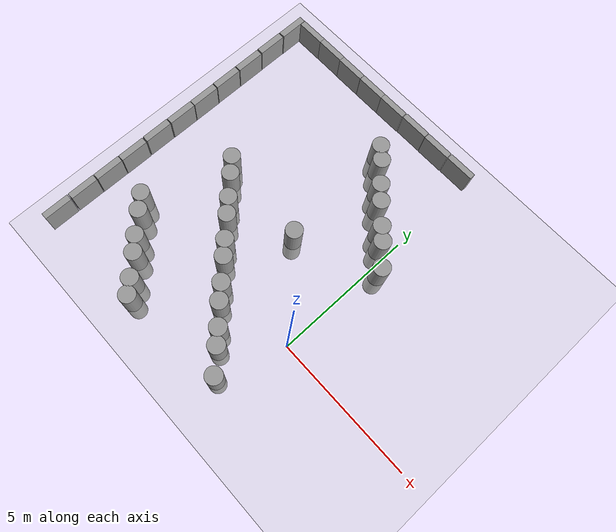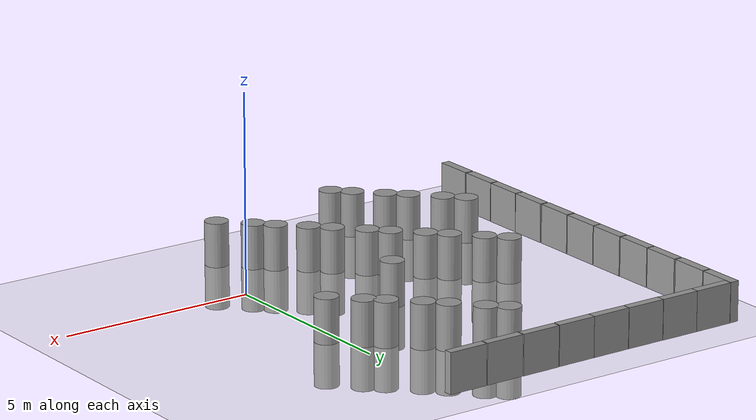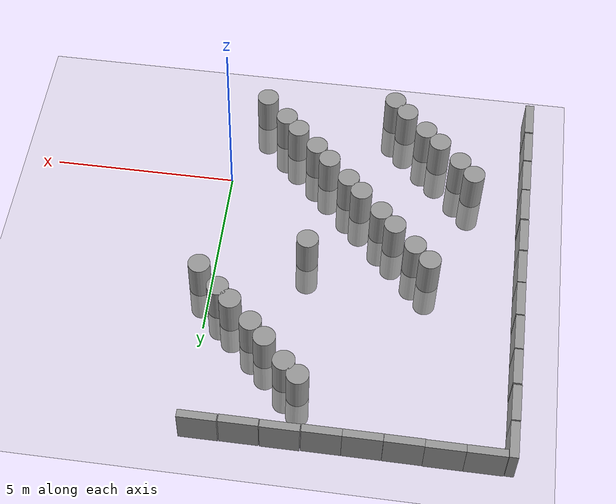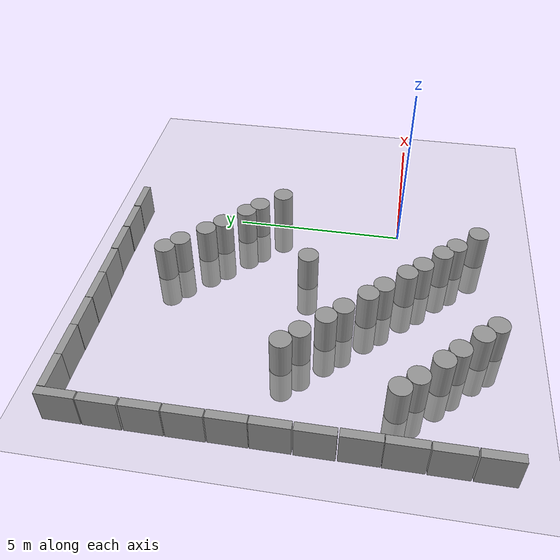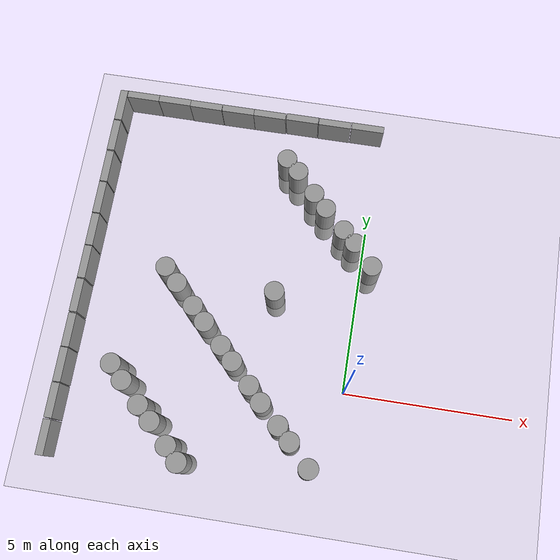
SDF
<sdf version="1.6">
 <world name="default">
  <model name="ground_plane">
   <static>1</static>
   <static>1</static>
   <link name="link">
    <collision name="collision">
     <geometry><plane><normal>0 0 1</normal><size>100 100</size></plane></geometry>
     <surface><friction><ode><mu>100</mu><mu2>50</mu2></ode></friction></surface>
    </collision>
    <visual name="visual">
     <cast_shadows>0</cast_shadows>
     <geometry><plane><normal>0 0 1</normal><size>100 100</size></plane></geometry>
     <material>
      <script><uri>file://media/materials/scripts/gazebo.material</uri><name>Gazebo/Grey</name></script>
     </material>
    </visual>
   </link>
  </model>
  <model name="unit_box_clone">
   <pose>-7.49845 8.12002 0.499999 -1e-06 2e-06 0.00043</pose>
   <link name="link">
    <inertial>
     <mass>1</mass>
     <inertia>
      <ixx>0.166667</ixx>
      <ixy>0</ixy>
      <ixz>0</ixz>
      <iyy>0.166667</iyy>
      <iyz>0</iyz>
      <izz>0.166667</izz>
     </inertia>
    </inertial>
    <collision name="collision"><geometry><box><size>1 0.210541 1</size></box></geometry></collision>
    <visual name="visual">
     <geometry><box><size>1 0.210541 1</size></box></geometry>
     <material>
      <script><name>Gazebo/Grey</name><uri>file://media/materials/scripts/gazebo.material</uri></script>
     </material>
    </visual>
   </link>
  </model>
  <model name="unit_box_clone_0">
   <pose>-6.49724 8.11954 0.499999 1e-06 -2e-06 -0.002361</pose>
   <link name="link">
    <inertial>
     <mass>1</mass>
     <inertia>
      <ixx>0.166667</ixx>
      <ixy>0</ixy>
      <ixz>0</ixz>
      <iyy>0.166667</iyy>
      <iyz>0</iyz>
      <izz>0.166667</izz>
     </inertia>
    </inertial>
    <collision name="collision"><geometry><box><size>1 0.210541 1</size></box></geometry></collision>
    <visual name="visual">
     <geometry><box><size>1 0.210541 1</size></box></geometry>
     <material>
      <script><name>Gazebo/Grey</name><uri>file://media/materials/scripts/gazebo.material</uri></script>
     </material>
    </visual>
   </link>
  </model>
  <model name="unit_box_clone_1">
   <pose>-5.49722 8.10835 0.499999 1e-06 2e-06 -0.002535</pose>
   <link name="link">
    <inertial>
     <mass>1</mass>
     <inertia>
      <ixx>0.166667</ixx>
      <ixy>0</ixy>
      <ixz>0</ixz>
      <iyy>0.166667</iyy>
      <iyz>0</iyz>
      <izz>0.166667</izz>
     </inertia>
    </inertial>
    <collision name="collision"><geometry><box><size>1 0.210541 1</size></box></geometry></collision>
    <visual name="visual">
     <geometry><box><size>1 0.210541 1</size></box></geometry>
     <material>
      <script><name>Gazebo/Grey</name><uri>file://media/materials/scripts/gazebo.material</uri></script>
     </material>
    </visual>
   </link>
  </model>
  <model name="unit_box_clone_4">
   <pose>-2.46316 8.11871 0.499999 -1e-06 2e-06 0.00043</pose>
   <link name="link">
    <inertial>
     <mass>1</mass>
     <inertia>
      <ixx>0.166667</ixx>
      <ixy>0</ixy>
      <ixz>0</ixz>
      <iyy>0.166667</iyy>
      <iyz>0</iyz>
      <izz>0.166667</izz>
     </inertia>
    </inertial>
    <collision name="collision"><geometry><box><size>1 0.210541 1</size></box></geometry></collision>
    <visual name="visual">
     <geometry><box><size>1 0.210541 1</size></box></geometry>
     <material>
      <script><name>Gazebo/Grey</name><uri>file://media/materials/scripts/gazebo.material</uri></script>
     </material>
    </visual>
   </link>
  </model>
  <model name="unit_box_clone_5">
   <pose>-1.44425 8.11205 0.499999 -1e-06 2e-06 0.00043</pose>
   <link name="link">
    <inertial>
     <mass>1</mass>
     <inertia>
      <ixx>0.166667</ixx>
      <ixy>0</ixy>
      <ixz>0</ixz>
      <iyy>0.166667</iyy>
      <iyz>0</iyz>
      <izz>0.166667</izz>
     </inertia>
    </inertial>
    <collision name="collision"><geometry><box><size>1 0.210541 1</size></box></geometry></collision>
    <visual name="visual">
     <geometry><box><size>1 0.210541 1</size></box></geometry>
     <material>
      <script><name>Gazebo/Grey</name><uri>file://media/materials/scripts/gazebo.material</uri></script>
     </material>
    </visual>
   </link>
  </model>
  <model name="unit_box_clone_6">
   <pose>-0.418677 8.1187 0.499999 -1e-06 2e-06 0.00043</pose>
   <link name="link">
    <inertial>
     <mass>1</mass>
     <inertia>
      <ixx>0.166667</ixx>
      <ixy>0</ixy>
      <ixz>0</ixz>
      <iyy>0.166667</iyy>
      <iyz>0</iyz>
      <izz>0.166667</izz>
     </inertia>
    </inertial>
    <collision name="collision"><geometry><box><size>1 0.210541 1</size></box></geometry></collision>
    <visual name="visual">
     <geometry><box><size>1 0.210541 1</size></box></geometry>
     <material>
      <script><name>Gazebo/Grey</name><uri>file://media/materials/scripts/gazebo.material</uri></script>
     </material>
    </visual>
   </link>
  </model>
  <model name="unit_box_0_clone_4_clone">
   <pose>-8.12647 7.71768 0.5 1e-06 1e-06 0.000121</pose>
   <link name="link">
    <inertial>
     <mass>1</mass>
     <inertia>
      <ixx>0.166667</ixx>
      <ixy>0</ixy>
      <ixz>0</ixz>
      <iyy>0.166667</iyy>
      <iyz>0</iyz>
      <izz>0.166667</izz>
     </inertia>
    </inertial>
    <collision name="collision"><geometry><box><size>0.230819 1 1</size></box></geometry></collision>
    <visual name="visual">
     <geometry><box><size>0.230819 1 1</size></box></geometry>
     <material>
      <script><name>Gazebo/Grey</name><uri>file://media/materials/scripts/gazebo.material</uri></script>
     </material>
    </visual>
   </link>
  </model>
  <model name="unit_box_0_clone_4_clone_0">
   <pose>-8.13281 6.68714 0.5 1e-06 1e-06 0.000121</pose>
   <link name="link">
    <inertial>
     <mass>1</mass>
     <inertia>
      <ixx>0.166667</ixx>
      <ixy>0</ixy>
      <ixz>0</ixz>
      <iyy>0.166667</iyy>
      <iyz>0</iyz>
      <izz>0.166667</izz>
     </inertia>
    </inertial>
    <collision name="collision"><geometry><box><size>0.230819 1 1</size></box></geometry></collision>
    <visual name="visual">
     <geometry><box><size>0.230819 1 1</size></box></geometry>
     <material>
      <script><name>Gazebo/Grey</name><uri>file://media/materials/scripts/gazebo.material</uri></script>
     </material>
    </visual>
   </link>
  </model>
  <model name="unit_box_0_clone_4_clone_1">
   <pose>-8.12606 5.64722 0.5 1e-06 1e-06 0.000121</pose>
   <link name="link">
    <inertial>
     <mass>1</mass>
     <inertia>
      <ixx>0.166667</ixx>
      <ixy>0</ixy>
      <ixz>0</ixz>
      <iyy>0.166667</iyy>
      <iyz>0</iyz>
      <izz>0.166667</izz>
     </inertia>
    </inertial>
    <collision name="collision"><geometry><box><size>0.230819 1 1</size></box></geometry></collision>
    <visual name="visual">
     <geometry><box><size>0.230819 1 1</size></box></geometry>
     <material>
      <script><name>Gazebo/Grey</name><uri>file://media/materials/scripts/gazebo.material</uri></script>
     </material>
    </visual>
   </link>
  </model>
  <model name="unit_box_0_clone_4_clone_2">
   <pose>-8.12607 4.6208 0.5 1e-06 1e-06 0.000121</pose>
   <link name="link">
    <inertial>
     <mass>1</mass>
     <inertia>
      <ixx>0.166667</ixx>
      <ixy>0</ixy>
      <ixz>0</ixz>
      <iyy>0.166667</iyy>
      <iyz>0</iyz>
      <izz>0.166667</izz>
     </inertia>
    </inertial>
    <collision name="collision"><geometry><box><size>0.230819 1 1</size></box></geometry></collision>
    <visual name="visual">
     <geometry><box><size>0.230819 1 1</size></box></geometry>
     <material>
      <script><name>Gazebo/Grey</name><uri>file://media/materials/scripts/gazebo.material</uri></script>
     </material>
    </visual>
   </link>
  </model>
  <model name="unit_box_0_clone_4_clone_3">
   <pose>-8.11932 3.59438 0.5 1e-06 1e-06 0.000121</pose>
   <link name="link">
    <inertial>
     <mass>1</mass>
     <inertia>
      <ixx>0.166667</ixx>
      <ixy>0</ixy>
      <ixz>0</ixz>
      <iyy>0.166667</iyy>
      <iyz>0</iyz>
      <izz>0.166667</izz>
     </inertia>
    </inertial>
    <collision name="collision"><geometry><box><size>0.230819 1 1</size></box></geometry></collision>
    <visual name="visual">
     <geometry><box><size>0.230819 1 1</size></box></geometry>
     <material>
      <script><name>Gazebo/Grey</name><uri>file://media/materials/scripts/gazebo.material</uri></script>
     </material>
    </visual>
   </link>
  </model>
  <model name="unit_box_0_clone_4_clone_4">
   <pose>-8.11932 2.57472 0.5 1e-06 1e-06 0.000121</pose>
   <link name="link">
    <inertial>
     <mass>1</mass>
     <inertia>
      <ixx>0.166667</ixx>
      <ixy>0</ixy>
      <ixz>0</ixz>
      <iyy>0.166667</iyy>
      <iyz>0</iyz>
      <izz>0.166667</izz>
     </inertia>
    </inertial>
    <collision name="collision"><geometry><box><size>0.230819 1 1</size></box></geometry></collision>
    <visual name="visual">
     <geometry><box><size>0.230819 1 1</size></box></geometry>
     <material>
      <script><name>Gazebo/Grey</name><uri>file://media/materials/scripts/gazebo.material</uri></script>
     </material>
    </visual>
   </link>
  </model>
  <model name="unit_box_0_clone_4_clone_5">
   <pose>-8.12608 1.54155 0.5 1e-06 1e-06 0.000121</pose>
   <link name="link">
    <inertial>
     <mass>1</mass>
     <inertia>
      <ixx>0.166667</ixx>
      <ixy>0</ixy>
      <ixz>0</ixz>
      <iyy>0.166667</iyy>
      <iyz>0</iyz>
      <izz>0.166667</izz>
     </inertia>
    </inertial>
    <collision name="collision"><geometry><box><size>0.230819 1 1</size></box></geometry></collision>
    <visual name="visual">
     <geometry><box><size>0.230819 1 1</size></box></geometry>
     <material>
      <script><name>Gazebo/Grey</name><uri>file://media/materials/scripts/gazebo.material</uri></script>
     </material>
    </visual>
   </link>
  </model>
  <model name="unit_box_0_clone_4_clone_6">
   <pose>-8.11933 0.501629 0.5 1e-06 1e-06 0.000121</pose>
   <link name="link">
    <inertial>
     <mass>1</mass>
     <inertia>
      <ixx>0.166667</ixx>
      <ixy>0</ixy>
      <ixz>0</ixz>
      <iyy>0.166667</iyy>
      <iyz>0</iyz>
      <izz>0.166667</izz>
     </inertia>
    </inertial>
    <collision name="collision"><geometry><box><size>0.230819 1 1</size></box></geometry></collision>
    <visual name="visual">
     <geometry><box><size>0.230819 1 1</size></box></geometry>
     <material>
      <script><name>Gazebo/Grey</name><uri>file://media/materials/scripts/gazebo.material</uri></script>
     </material>
    </visual>
   </link>
  </model>
  <model name="unit_box_0_clone_4_clone_7">
   <pose>-8.12609 -0.518035 0.5 1e-06 1e-06 0.000121</pose>
   <link name="link">
    <inertial>
     <mass>1</mass>
     <inertia>
      <ixx>0.166667</ixx>
      <ixy>0</ixy>
      <ixz>0</ixz>
      <iyy>0.166667</iyy>
      <iyz>0</iyz>
      <izz>0.166667</izz>
     </inertia>
    </inertial>
    <collision name="collision"><geometry><box><size>0.230819 1 1</size></box></geometry></collision>
    <visual name="visual">
     <geometry><box><size>0.230819 1 1</size></box></geometry>
     <material>
      <script><name>Gazebo/Grey</name><uri>file://media/materials/scripts/gazebo.material</uri></script>
     </material>
    </visual>
   </link>
  </model>
  <model name="unit_box_0_clone_4_clone_8">
   <pose>-8.13284 -1.54446 0.5 1e-06 1e-06 0.000121</pose>
   <link name="link">
    <inertial>
     <mass>1</mass>
     <inertia>
      <ixx>0.166667</ixx>
      <ixy>0</ixy>
      <ixz>0</ixz>
      <iyy>0.166667</iyy>
      <iyz>0</iyz>
      <izz>0.166667</izz>
     </inertia>
    </inertial>
    <collision name="collision"><geometry><box><size>0.230819 1 1</size></box></geometry></collision>
    <visual name="visual">
     <geometry><box><size>0.230819 1 1</size></box></geometry>
     <material>
      <script><name>Gazebo/Grey</name><uri>file://media/materials/scripts/gazebo.material</uri></script>
     </material>
    </visual>
   </link>
  </model>
  <model name="unit_box_0_clone_4_clone_9">
   <pose>-8.13285 -2.58438 0.5 1e-06 1e-06 0.000121</pose>
   <link name="link">
    <inertial>
     <mass>1</mass>
     <inertia>
      <ixx>0.166667</ixx>
      <ixy>0</ixy>
      <ixz>0</ixz>
      <iyy>0.166667</iyy>
      <iyz>0</iyz>
      <izz>0.166667</izz>
     </inertia>
    </inertial>
    <collision name="collision"><geometry><box><size>0.230819 1 1</size></box></geometry></collision>
    <visual name="visual">
     <geometry><box><size>0.230819 1 1</size></box></geometry>
     <material>
      <script><name>Gazebo/Grey</name><uri>file://media/materials/scripts/gazebo.material</uri></script>
     </material>
    </visual>
   </link>
  </model>
  <model name="unit_cylinder_153_clone_clone_5_clone_clone_13_clone_0_clone_29_clone_32_clone_0_clone_4_clone_46_clone_42_clone_clone_clone_4_clone_2_clone_5">
   <static>1</static>
   <pose>-6.6952 -0.278575 0 0 -0 0</pose>
   <link name="link">
    <inertial>
     <mass>1</mass>
     <inertia><ixx>0.145833</ixx><ixy>0</ixy><ixz>0</ixz><iyy>0.145833</iyy><iyz>0</iyz><izz>0.125</izz></inertia>
    </inertial>
    <collision name="collision">
     <geometry><cylinder><radius>0.295479</radius><length>2.18667</length></cylinder></geometry>
    </collision>
    <visual name="visual">
     <geometry><cylinder><radius>0.295479</radius><length>2.18667</length></cylinder></geometry>
     <material>
      <script><name>Gazebo/Grey</name><uri>file://media/materials/scripts/gazebo.material</uri></script>
     </material>
    </visual>
   </link>
  </model>
  <model name="unit_cylinder_153_clone_clone_5_clone_clone_13_clone_0_clone_29_clone_32_clone_0_clone_4_clone_46_clone_42_clone_clone_clone_4_clone_2_clone_6">
   <static>1</static>
   <pose>-6.28978 -0.703297 0 0 -0 0</pose>
   <link name="link">
    <inertial>
     <mass>1</mass>
     <inertia><ixx>0.145833</ixx><ixy>0</ixy><ixz>0</ixz><iyy>0.145833</iyy><iyz>0</iyz><izz>0.125</izz></inertia>
    </inertial>
    <collision name="collision">
     <geometry><cylinder><radius>0.295479</radius><length>2.18667</length></cylinder></geometry>
    </collision>
    <visual name="visual">
     <geometry><cylinder><radius>0.295479</radius><length>2.18667</length></cylinder></geometry>
     <material>
      <script><name>Gazebo/Grey</name><uri>file://media/materials/scripts/gazebo.material</uri></script>
     </material>
    </visual>
   </link>
  </model>
  <model name="unit_cylinder_153_clone_clone_5_clone_clone_13_clone_0_clone_29_clone_32_clone_0_clone_4_clone_46_clone_42_clone_clone_clone_4_clone_2_clone_7">
   <static>1</static>
   <pose>-5.69132 -1.31142 0 0 -0 0</pose>
   <link name="link">
    <inertial>
     <mass>1</mass>
     <inertia><ixx>0.145833</ixx><ixy>0</ixy><ixz>0</ixz><iyy>0.145833</iyy><iyz>0</iyz><izz>0.125</izz></inertia>
    </inertial>
    <collision name="collision">
     <geometry><cylinder><radius>0.295479</radius><length>2.18667</length></cylinder></geometry>
    </collision>
    <visual name="visual">
     <geometry><cylinder><radius>0.295479</radius><length>2.18667</length></cylinder></geometry>
     <material>
      <script><name>Gazebo/Grey</name><uri>file://media/materials/scripts/gazebo.material</uri></script>
     </material>
    </visual>
   </link>
  </model>
  <model name="unit_cylinder_153_clone_clone_5_clone_clone_13_clone_0_clone_29_clone_32_clone_0_clone_4_clone_46_clone_42_clone_clone_clone_4_clone_2_clone_8">
   <static>1</static>
   <pose>-5.27625 -1.70719 0 0 -0 0</pose>
   <link name="link">
    <inertial>
     <mass>1</mass>
     <inertia><ixx>0.145833</ixx><ixy>0</ixy><ixz>0</ixz><iyy>0.145833</iyy><iyz>0</iyz><izz>0.125</izz></inertia>
    </inertial>
    <collision name="collision">
     <geometry><cylinder><radius>0.295479</radius><length>2.18667</length></cylinder></geometry>
    </collision>
    <visual name="visual">
     <geometry><cylinder><radius>0.295479</radius><length>2.18667</length></cylinder></geometry>
     <material>
      <script><name>Gazebo/Grey</name><uri>file://media/materials/scripts/gazebo.material</uri></script>
     </material>
    </visual>
   </link>
  </model>
  <model name="unit_cylinder_153_clone_clone_5_clone_clone_13_clone_0_clone_29_clone_32_clone_0_clone_4_clone_46_clone_42_clone_clone_clone_4_clone_2_clone_9">
   <static>1</static>
   <pose>-4.69709 -2.29601 0 0 -0 0</pose>
   <link name="link">
    <inertial>
     <mass>1</mass>
     <inertia><ixx>0.145833</ixx><ixy>0</ixy><ixz>0</ixz><iyy>0.145833</iyy><iyz>0</iyz><izz>0.125</izz></inertia>
    </inertial>
    <collision name="collision">
     <geometry><cylinder><radius>0.295479</radius><length>2.18667</length></cylinder></geometry>
    </collision>
    <visual name="visual">
     <geometry><cylinder><radius>0.295479</radius><length>2.18667</length></cylinder></geometry>
     <material>
      <script><name>Gazebo/Grey</name><uri>file://media/materials/scripts/gazebo.material</uri></script>
     </material>
    </visual>
   </link>
  </model>
  <model name="unit_cylinder_153_clone_clone_5_clone_clone_13_clone_0_clone_29_clone_32_clone_0_clone_4_clone_46_clone_42_clone_clone_clone_4_clone_2_clone_10">
   <static>1</static>
   <pose>-4.32064 -2.69177 0 0 -0 0</pose>
   <link name="link">
    <inertial>
     <mass>1</mass>
     <inertia><ixx>0.145833</ixx><ixy>0</ixy><ixz>0</ixz><iyy>0.145833</iyy><iyz>0</iyz><izz>0.125</izz></inertia>
    </inertial>
    <collision name="collision">
     <geometry><cylinder><radius>0.295479</radius><length>2.18667</length></cylinder></geometry>
    </collision>
    <visual name="visual">
     <geometry><cylinder><radius>0.295479</radius><length>2.18667</length></cylinder></geometry>
     <material>
      <script><name>Gazebo/Grey</name><uri>file://media/materials/scripts/gazebo.material</uri></script>
     </material>
    </visual>
   </link>
  </model>
  <model name="unit_cylinder_153_clone_clone_5_clone_clone_13_clone_0_clone_29_clone_32_clone_0_clone_4_clone_46_clone_42_clone_clone_clone_4_clone_2_clone_15">
   <static>1</static>
   <pose>-5.70923 2.76115 0 0 -0 0</pose>
   <link name="link">
    <inertial>
     <mass>1</mass>
     <inertia><ixx>0.145833</ixx><ixy>0</ixy><ixz>0</ixz><iyy>0.145833</iyy><iyz>0</iyz><izz>0.125</izz></inertia>
    </inertial>
    <collision name="collision">
     <geometry><cylinder><radius>0.295479</radius><length>2.18667</length></cylinder></geometry>
    </collision>
    <visual name="visual">
     <geometry><cylinder><radius>0.295479</radius><length>2.18667</length></cylinder></geometry>
     <material>
      <script><name>Gazebo/Grey</name><uri>file://media/materials/scripts/gazebo.material</uri></script>
     </material>
    </visual>
   </link>
  </model>
  <model name="unit_cylinder_153_clone_clone_5_clone_clone_13_clone_0_clone_29_clone_32_clone_0_clone_4_clone_46_clone_42_clone_clone_clone_4_clone_2_clone_16">
   <static>1</static>
   <pose>-5.29137 2.33229 0 0 -0 0</pose>
   <link name="link">
    <inertial>
     <mass>1</mass>
     <inertia><ixx>0.145833</ixx><ixy>0</ixy><ixz>0</ixz><iyy>0.145833</iyy><iyz>0</iyz><izz>0.125</izz></inertia>
    </inertial>
    <collision name="collision">
     <geometry><cylinder><radius>0.295479</radius><length>2.18667</length></cylinder></geometry>
    </collision>
    <visual name="visual">
     <geometry><cylinder><radius>0.295479</radius><length>2.18667</length></cylinder></geometry>
     <material>
      <script><name>Gazebo/Grey</name><uri>file://media/materials/scripts/gazebo.material</uri></script>
     </material>
    </visual>
   </link>
  </model>
  <model name="unit_box_clone_4_clone">
   <pose>-3.48794 8.10562 0.499999 -1e-06 2e-06 0.000215</pose>
   <link name="link">
    <inertial>
     <mass>1</mass>
     <inertia>
      <ixx>0.166667</ixx>
      <ixy>0</ixy>
      <ixz>0</ixz>
      <iyy>0.166667</iyy>
      <iyz>0</iyz>
      <izz>0.166667</izz>
     </inertia>
    </inertial>
    <collision name="collision"><geometry><box><size>1 0.210541 1</size></box></geometry></collision>
    <visual name="visual">
     <geometry><box><size>1 0.210541 1</size></box></geometry>
     <material>
      <script><name>Gazebo/Grey</name><uri>file://media/materials/scripts/gazebo.material</uri></script>
     </material>
    </visual>
   </link>
  </model>
  <model name="unit_box_clone_4_clone_0">
   <pose>-4.4886 8.10543 0.499999 -1e-06 2e-06 0.000235</pose>
   <link name="link">
    <inertial>
     <mass>1</mass>
     <inertia>
      <ixx>0.166667</ixx>
      <ixy>0</ixy>
      <ixz>0</ixz>
      <iyy>0.166667</iyy>
      <iyz>0</iyz>
      <izz>0.166667</izz>
     </inertia>
    </inertial>
    <collision name="collision"><geometry><box><size>1 0.210541 1</size></box></geometry></collision>
    <visual name="visual">
     <geometry><box><size>1 0.210541 1</size></box></geometry>
     <material>
      <script><name>Gazebo/Grey</name><uri>file://media/materials/scripts/gazebo.material</uri></script>
     </material>
    </visual>
   </link>
  </model>
  <model name="unit_cylinder_153_clone_clone_5_clone_clone_13_clone_0_clone_29_clone_32_clone_0_clone_4_clone_46_clone_42_clone_clone_clone_4_clone_2_clone_16_clone">
   <static>1</static>
   <pose>-4.69757 1.72749 0 0 -0 0</pose>
   <link name="link">
    <inertial>
     <mass>1</mass>
     <inertia><ixx>0.145833</ixx><ixy>0</ixy><ixz>0</ixz><iyy>0.145833</iyy><iyz>0</iyz><izz>0.125</izz></inertia>
    </inertial>
    <collision name="collision">
     <geometry><cylinder><radius>0.295479</radius><length>2.18667</length></cylinder></geometry>
    </collision>
    <visual name="visual">
     <geometry><cylinder><radius>0.295479</radius><length>2.18667</length></cylinder></geometry>
     <material>
      <script><name>Gazebo/Grey</name><uri>file://media/materials/scripts/gazebo.material</uri></script>
     </material>
    </visual>
   </link>
  </model>
  <model name="unit_cylinder_153_clone_clone_5_clone_clone_13_clone_0_clone_29_clone_32_clone_0_clone_4_clone_46_clone_42_clone_clone_clone_4_clone_2_clone_16_clone_0">
   <static>1</static>
   <pose>-4.29071 1.30963 0 0 -0 0</pose>
   <link name="link">
    <inertial>
     <mass>1</mass>
     <inertia><ixx>0.145833</ixx><ixy>0</ixy><ixz>0</ixz><iyy>0.145833</iyy><iyz>0</iyz><izz>0.125</izz></inertia>
    </inertial>
    <collision name="collision">
     <geometry><cylinder><radius>0.295479</radius><length>2.18667</length></cylinder></geometry>
    </collision>
    <visual name="visual">
     <geometry><cylinder><radius>0.295479</radius><length>2.18667</length></cylinder></geometry>
     <material>
      <script><name>Gazebo/Grey</name><uri>file://media/materials/scripts/gazebo.material</uri></script>
     </material>
    </visual>
   </link>
  </model>
  <model name="unit_cylinder_153_clone_clone_5_clone_clone_13_clone_0_clone_29_clone_32_clone_0_clone_4_clone_46_clone_42_clone_clone_clone_4_clone_2_clone_16_clone_1">
   <static>1</static>
   <pose>-3.68966 0.704826 0 0 -0 0</pose>
   <link name="link">
    <inertial>
     <mass>1</mass>
     <inertia><ixx>0.145833</ixx><ixy>0</ixy><ixz>0</ixz><iyy>0.145833</iyy><iyz>0</iyz><izz>0.125</izz></inertia>
    </inertial>
    <collision name="collision">
     <geometry><cylinder><radius>0.295479</radius><length>2.18667</length></cylinder></geometry>
    </collision>
    <visual name="visual">
     <geometry><cylinder><radius>0.295479</radius><length>2.18667</length></cylinder></geometry>
     <material>
      <script><name>Gazebo/Grey</name><uri>file://media/materials/scripts/gazebo.material</uri></script>
     </material>
    </visual>
   </link>
  </model>
  <model name="unit_cylinder_153_clone_clone_5_clone_clone_13_clone_0_clone_29_clone_32_clone_0_clone_4_clone_46_clone_42_clone_clone_clone_4_clone_2_clone_16_clone_2">
   <static>1</static>
   <pose>-3.29775 0.304009 0 0 -0 0</pose>
   <link name="link">
    <inertial>
     <mass>1</mass>
     <inertia><ixx>0.145833</ixx><ixy>0</ixy><ixz>0</ixz><iyy>0.145833</iyy><iyz>0</iyz><izz>0.125</izz></inertia>
    </inertial>
    <collision name="collision">
     <geometry><cylinder><radius>0.295479</radius><length>2.18667</length></cylinder></geometry>
    </collision>
    <visual name="visual">
     <geometry><cylinder><radius>0.295479</radius><length>2.18667</length></cylinder></geometry>
     <material>
      <script><name>Gazebo/Grey</name><uri>file://media/materials/scripts/gazebo.material</uri></script>
     </material>
    </visual>
   </link>
  </model>
  <model name="unit_cylinder_153_clone_clone_5_clone_clone_13_clone_0_clone_29_clone_32_clone_0_clone_4_clone_46_clone_42_clone_clone_clone_4_clone_2_clone_16_clone_3">
   <static>1</static>
   <pose>-2.70099 -0.301671 0 0 -0 0</pose>
   <link name="link">
    <inertial>
     <mass>1</mass>
     <inertia><ixx>0.145833</ixx><ixy>0</ixy><ixz>0</ixz><iyy>0.145833</iyy><iyz>0</iyz><izz>0.125</izz></inertia>
    </inertial>
    <collision name="collision">
     <geometry><cylinder><radius>0.295479</radius><length>2.18667</length></cylinder></geometry>
    </collision>
    <visual name="visual">
     <geometry><cylinder><radius>0.295479</radius><length>2.18667</length></cylinder></geometry>
     <material>
      <script><name>Gazebo/Grey</name><uri>file://media/materials/scripts/gazebo.material</uri></script>
     </material>
    </visual>
   </link>
  </model>
  <model name="unit_cylinder_153_clone_clone_5_clone_clone_13_clone_0_clone_29_clone_32_clone_0_clone_4_clone_46_clone_42_clone_clone_clone_4_clone_2_clone_16_clone_4">
   <static>1</static>
   <pose>-2.30017 -0.729209 0 0 -0 0</pose>
   <link name="link">
    <inertial>
     <mass>1</mass>
     <inertia><ixx>0.145833</ixx><ixy>0</ixy><ixz>0</ixz><iyy>0.145833</iyy><iyz>0</iyz><izz>0.125</izz></inertia>
    </inertial>
    <collision name="collision">
     <geometry><cylinder><radius>0.295479</radius><length>2.18667</length></cylinder></geometry>
    </collision>
    <visual name="visual">
     <geometry><cylinder><radius>0.295479</radius><length>2.18667</length></cylinder></geometry>
     <material>
      <script><name>Gazebo/Grey</name><uri>file://media/materials/scripts/gazebo.material</uri></script>
     </material>
    </visual>
   </link>
  </model>
  <model name="unit_cylinder_153_clone_clone_5_clone_clone_13_clone_0_clone_29_clone_32_clone_0_clone_4_clone_46_clone_42_clone_clone_clone_4_clone_2_clone_16_clone_5">
   <static>1</static>
   <pose>-1.71231 -1.28145 0 0 -0 0</pose>
   <link name="link">
    <inertial>
     <mass>1</mass>
     <inertia><ixx>0.145833</ixx><ixy>0</ixy><ixz>0</ixz><iyy>0.145833</iyy><iyz>0</iyz><izz>0.125</izz></inertia>
    </inertial>
    <collision name="collision">
     <geometry><cylinder><radius>0.295479</radius><length>2.18667</length></cylinder></geometry>
    </collision>
    <visual name="visual">
     <geometry><cylinder><radius>0.295479</radius><length>2.18667</length></cylinder></geometry>
     <material>
      <script><name>Gazebo/Grey</name><uri>file://media/materials/scripts/gazebo.material</uri></script>
     </material>
    </visual>
   </link>
  </model>
  <model name="unit_cylinder_153_clone_clone_5_clone_clone_13_clone_0_clone_29_clone_32_clone_0_clone_4_clone_46_clone_42_clone_clone_clone_4_clone_2_clone_16_clone_6">
   <static>1</static>
   <pose>-1.32931 -1.67336 0 0 -0 0</pose>
   <link name="link">
    <inertial>
     <mass>1</mass>
     <inertia><ixx>0.145833</ixx><ixy>0</ixy><ixz>0</ixz><iyy>0.145833</iyy><iyz>0</iyz><izz>0.125</izz></inertia>
    </inertial>
    <collision name="collision">
     <geometry><cylinder><radius>0.295479</radius><length>2.18667</length></cylinder></geometry>
    </collision>
    <visual name="visual">
     <geometry><cylinder><radius>0.295479</radius><length>2.18667</length></cylinder></geometry>
     <material>
      <script><name>Gazebo/Grey</name><uri>file://media/materials/scripts/gazebo.material</uri></script>
     </material>
    </visual>
   </link>
  </model>
  <model name="unit_cylinder_153_clone_clone_5_clone_clone_13_clone_0_clone_29_clone_32_clone_0_clone_4_clone_46_clone_42_clone_clone_clone_4_clone_2_clone_16_clone_7">
   <static>1</static>
   <pose>-0.696919 -2.31467 0 0 -0 0</pose>
   <link name="link">
    <inertial>
     <mass>1</mass>
     <inertia><ixx>0.145833</ixx><ixy>0</ixy><ixz>0</ixz><iyy>0.145833</iyy><iyz>0</iyz><izz>0.125</izz></inertia>
    </inertial>
    <collision name="collision">
     <geometry><cylinder><radius>0.295479</radius><length>2.18667</length></cylinder></geometry>
    </collision>
    <visual name="visual">
     <geometry><cylinder><radius>0.295479</radius><length>2.18667</length></cylinder></geometry>
     <material>
      <script><name>Gazebo/Grey</name><uri>file://media/materials/scripts/gazebo.material</uri></script>
     </material>
    </visual>
   </link>
  </model>
  <model name="unit_cylinder_153_clone_clone_5_clone_clone_13_clone_0_clone_29_clone_32_clone_0_clone_4_clone_46_clone_42_clone_clone_clone_4_clone_2_clone_16_clone_6_clone_4">
   <static>1</static>
   <pose>0.27917 3.70087 0 0 -0 0</pose>
   <link name="link">
    <inertial>
     <mass>1</mass>
     <inertia><ixx>0.145833</ixx><ixy>0</ixy><ixz>0</ixz><iyy>0.145833</iyy><iyz>0</iyz><izz>0.125</izz></inertia>
    </inertial>
    <collision name="collision">
     <geometry><cylinder><radius>0.295479</radius><length>2.18667</length></cylinder></geometry>
    </collision>
    <visual name="visual">
     <geometry><cylinder><radius>0.295479</radius><length>2.18667</length></cylinder></geometry>
     <material>
      <script><name>Gazebo/Grey</name><uri>file://media/materials/scripts/gazebo.material</uri></script>
     </material>
    </visual>
   </link>
  </model>
  <model name="unit_cylinder_153_clone_clone_5_clone_clone_13_clone_0_clone_29_clone_32_clone_0_clone_4_clone_46_clone_42_clone_clone_clone_4_clone_2_clone_16_clone_6_clone_5">
   <static>1</static>
   <pose>-0.315063 4.33563 0 0 -0 0</pose>
   <link name="link">
    <inertial>
     <mass>1</mass>
     <inertia><ixx>0.145833</ixx><ixy>0</ixy><ixz>0</ixz><iyy>0.145833</iyy><iyz>0</iyz><izz>0.125</izz></inertia>
    </inertial>
    <collision name="collision">
     <geometry><cylinder><radius>0.295479</radius><length>2.18667</length></cylinder></geometry>
    </collision>
    <visual name="visual">
     <geometry><cylinder><radius>0.295479</radius><length>2.18667</length></cylinder></geometry>
     <material>
      <script><name>Gazebo/Grey</name><uri>file://media/materials/scripts/gazebo.material</uri></script>
     </material>
    </visual>
   </link>
  </model>
  <model name="unit_cylinder_153_clone_clone_5_clone_clone_13_clone_0_clone_29_clone_32_clone_0_clone_4_clone_46_clone_42_clone_clone_clone_4_clone_2_clone_16_clone_6_clone_6">
   <static>1</static>
   <pose>-0.693211 4.68677 0 0 -0 0</pose>
   <link name="link">
    <inertial>
     <mass>1</mass>
     <inertia><ixx>0.145833</ixx><ixy>0</ixy><ixz>0</ixz><iyy>0.145833</iyy><iyz>0</iyz><izz>0.125</izz></inertia>
    </inertial>
    <collision name="collision">
     <geometry><cylinder><radius>0.295479</radius><length>2.18667</length></cylinder></geometry>
    </collision>
    <visual name="visual">
     <geometry><cylinder><radius>0.295479</radius><length>2.18667</length></cylinder></geometry>
     <material>
      <script><name>Gazebo/Grey</name><uri>file://media/materials/scripts/gazebo.material</uri></script>
     </material>
    </visual>
   </link>
  </model>
  <model name="unit_cylinder_153_clone_clone_5_clone_clone_13_clone_0_clone_29_clone_32_clone_0_clone_4_clone_46_clone_42_clone_clone_clone_4_clone_2_clone_16_clone_6_clone_7">
   <static>1</static>
   <pose>-1.31445 5.28101 0 0 -0 0</pose>
   <link name="link">
    <inertial>
     <mass>1</mass>
     <inertia><ixx>0.145833</ixx><ixy>0</ixy><ixz>0</ixz><iyy>0.145833</iyy><iyz>0</iyz><izz>0.125</izz></inertia>
    </inertial>
    <collision name="collision">
     <geometry><cylinder><radius>0.295479</radius><length>2.18667</length></cylinder></geometry>
    </collision>
    <visual name="visual">
     <geometry><cylinder><radius>0.295479</radius><length>2.18667</length></cylinder></geometry>
     <material>
      <script><name>Gazebo/Grey</name><uri>file://media/materials/scripts/gazebo.material</uri></script>
     </material>
    </visual>
   </link>
  </model>
  <model name="unit_cylinder_153_clone_clone_5_clone_clone_13_clone_0_clone_29_clone_32_clone_0_clone_4_clone_46_clone_42_clone_clone_clone_4_clone_2_clone_16_clone_6_clone_8">
   <static>1</static>
   <pose>-1.73312 5.69968 0 0 -0 0</pose>
   <link name="link">
    <inertial>
     <mass>1</mass>
     <inertia><ixx>0.145833</ixx><ixy>0</ixy><ixz>0</ixz><iyy>0.145833</iyy><iyz>0</iyz><izz>0.125</izz></inertia>
    </inertial>
    <collision name="collision">
     <geometry><cylinder><radius>0.295479</radius><length>2.18667</length></cylinder></geometry>
    </collision>
    <visual name="visual">
     <geometry><cylinder><radius>0.295479</radius><length>2.18667</length></cylinder></geometry>
     <material>
      <script><name>Gazebo/Grey</name><uri>file://media/materials/scripts/gazebo.material</uri></script>
     </material>
    </visual>
   </link>
  </model>
  <model name="unit_cylinder_153_clone_clone_5_clone_clone_13_clone_0_clone_29_clone_32_clone_0_clone_4_clone_46_clone_42_clone_clone_clone_4_clone_2_clone_16_clone_6_clone_27">
   <static>1</static>
   <pose>-2.43688 2.51832 0 0 -0 0</pose>
   <link name="link">
    <inertial>
     <mass>1</mass>
     <inertia><ixx>0.145833</ixx><ixy>0</ixy><ixz>0</ixz><iyy>0.145833</iyy><iyz>0</iyz><izz>0.125</izz></inertia>
    </inertial>
    <collision name="collision">
     <geometry><cylinder><radius>0.295479</radius><length>2.18667</length></cylinder></geometry>
    </collision>
    <visual name="visual">
     <geometry><cylinder><radius>0.295479</radius><length>2.18667</length></cylinder></geometry>
     <material>
      <script><name>Gazebo/Grey</name><uri>file://media/materials/scripts/gazebo.material</uri></script>
     </material>
    </visual>
   </link>
  </model>
  <model name="unit_cylinder_153_clone_clone_5_clone_clone_13_clone_0_clone_29_clone_32_clone_0_clone_4_clone_46_clone_42_clone_clone_clone_4_clone_2_clone_16_clone_6_clone_28">
   <static>1</static>
   <pose>-2.31711 6.33081 0 0 -0 0</pose>
   <link name="link">
    <inertial>
     <mass>1</mass>
     <inertia><ixx>0.145833</ixx><ixy>0</ixy><ixz>0</ixz><iyy>0.145833</iyy><iyz>0</iyz><izz>0.125</izz></inertia>
    </inertial>
    <collision name="collision">
     <geometry><cylinder><radius>0.295479</radius><length>2.18667</length></cylinder></geometry>
    </collision>
    <visual name="visual">
     <geometry><cylinder><radius>0.295479</radius><length>2.18667</length></cylinder></geometry>
     <material>
      <script><name>Gazebo/Grey</name><uri>file://media/materials/scripts/gazebo.material</uri></script>
     </material>
    </visual>
   </link>
  </model>
  <model name="unit_cylinder_153_clone_clone_5_clone_clone_13_clone_0_clone_29_clone_32_clone_0_clone_4_clone_46_clone_42_clone_clone_clone_4_clone_2_clone_16_clone_6_clone_29">
   <static>1</static>
   <pose>-2.71186 6.68797 0 0 -0 0</pose>
   <link name="link">
    <inertial>
     <mass>1</mass>
     <inertia><ixx>0.145833</ixx><ixy>0</ixy><ixz>0</ixz><iyy>0.145833</iyy><iyz>0</iyz><izz>0.125</izz></inertia>
    </inertial>
    <collision name="collision">
     <geometry><cylinder><radius>0.295479</radius><length>2.18667</length></cylinder></geometry>
    </collision>
    <visual name="visual">
     <geometry><cylinder><radius>0.295479</radius><length>2.18667</length></cylinder></geometry>
     <material>
      <script><name>Gazebo/Grey</name><uri>file://media/materials/scripts/gazebo.material</uri></script>
     </material>
    </visual>
   </link>
  </model>
 </world>
</sdf>
